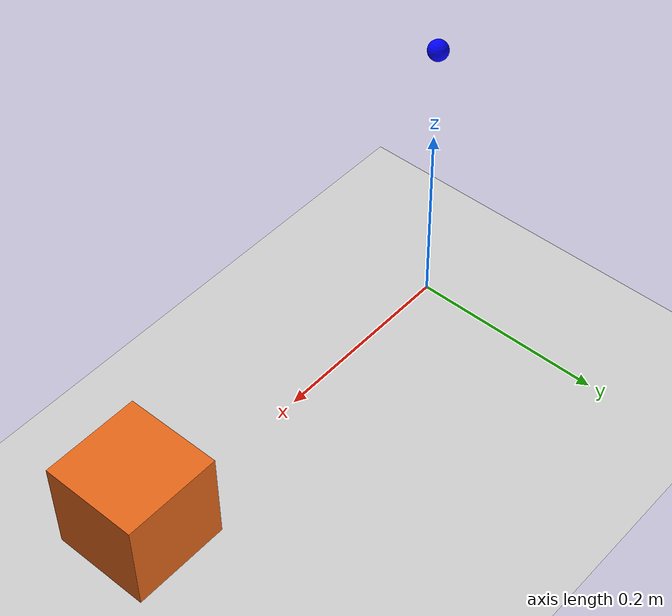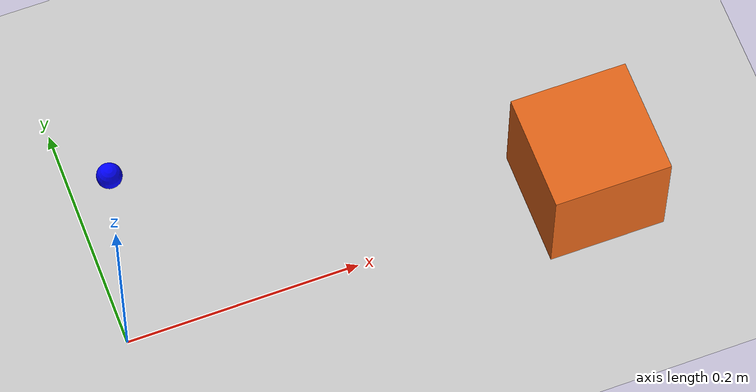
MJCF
<mujoco model="twin_mvp">
  <option timestep="0.002"/>
  <worldbody>
    <geom name="floor" type="plane" size="1 1 0.05" rgba="0.8 0.8 0.8 1"/>
    <body name="tcp_proxy" pos="0 0 0.3">
      <geom name="tcp_sphere" type="sphere" size="0.01" rgba="0 0 1 1"/>
      <site name="tcp_site" pos="0 0 0" size="0.005"/>
    </body>
    <body name="object_cube_a" pos="0.4 0 0.05" mocap="true">
      <geom name="object_cube_a_geom" type="box" size="0.05 0.05 0.05" rgba="0.9 0.4 0.1 1"/>
    </body>
  </worldbody>
</mujoco>
